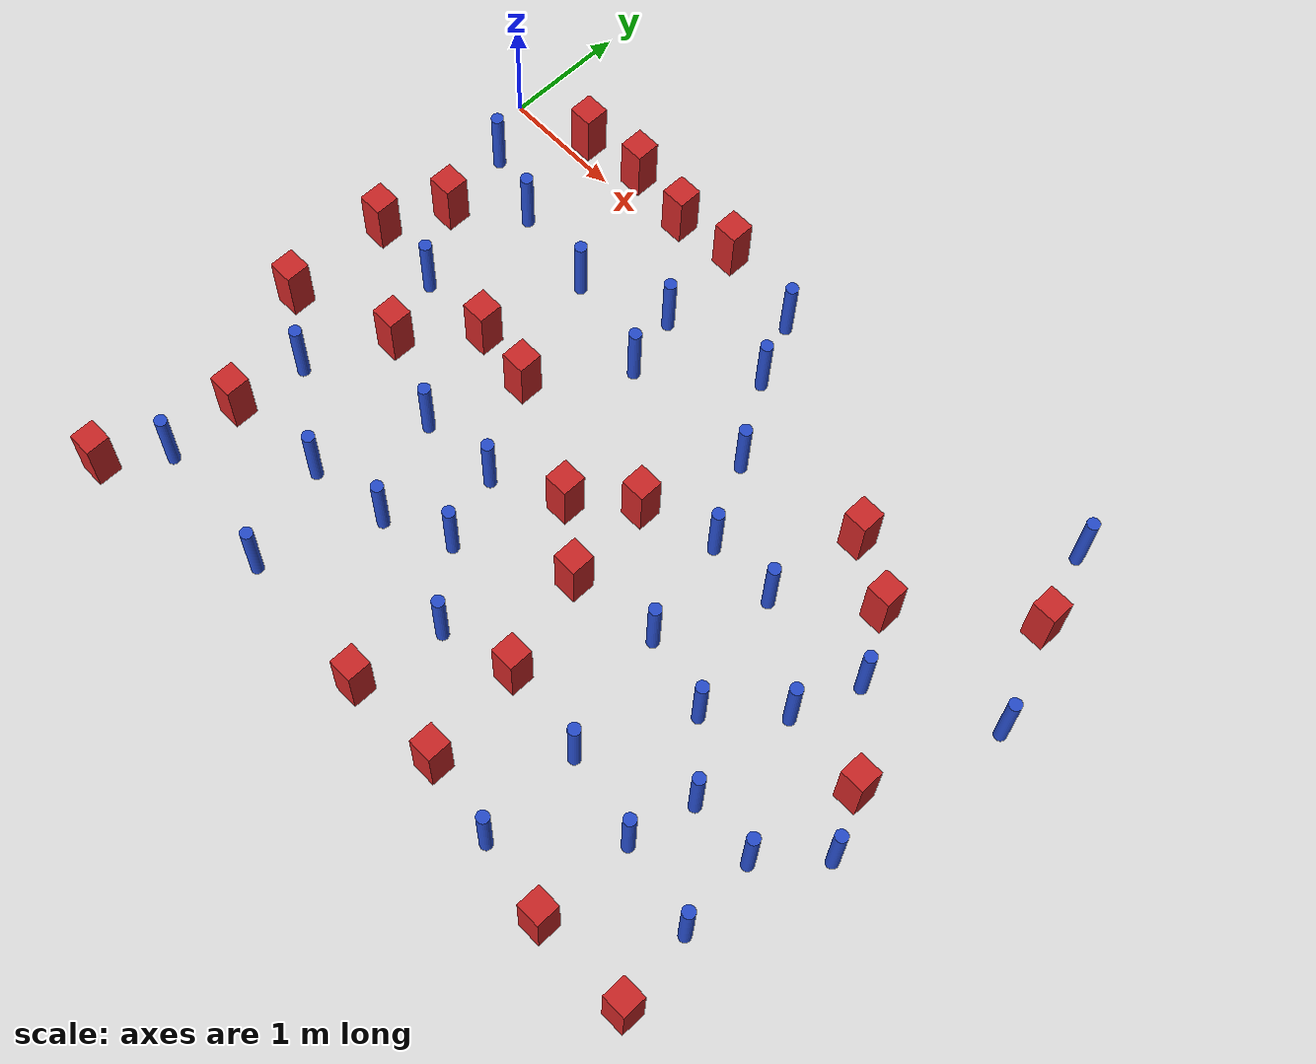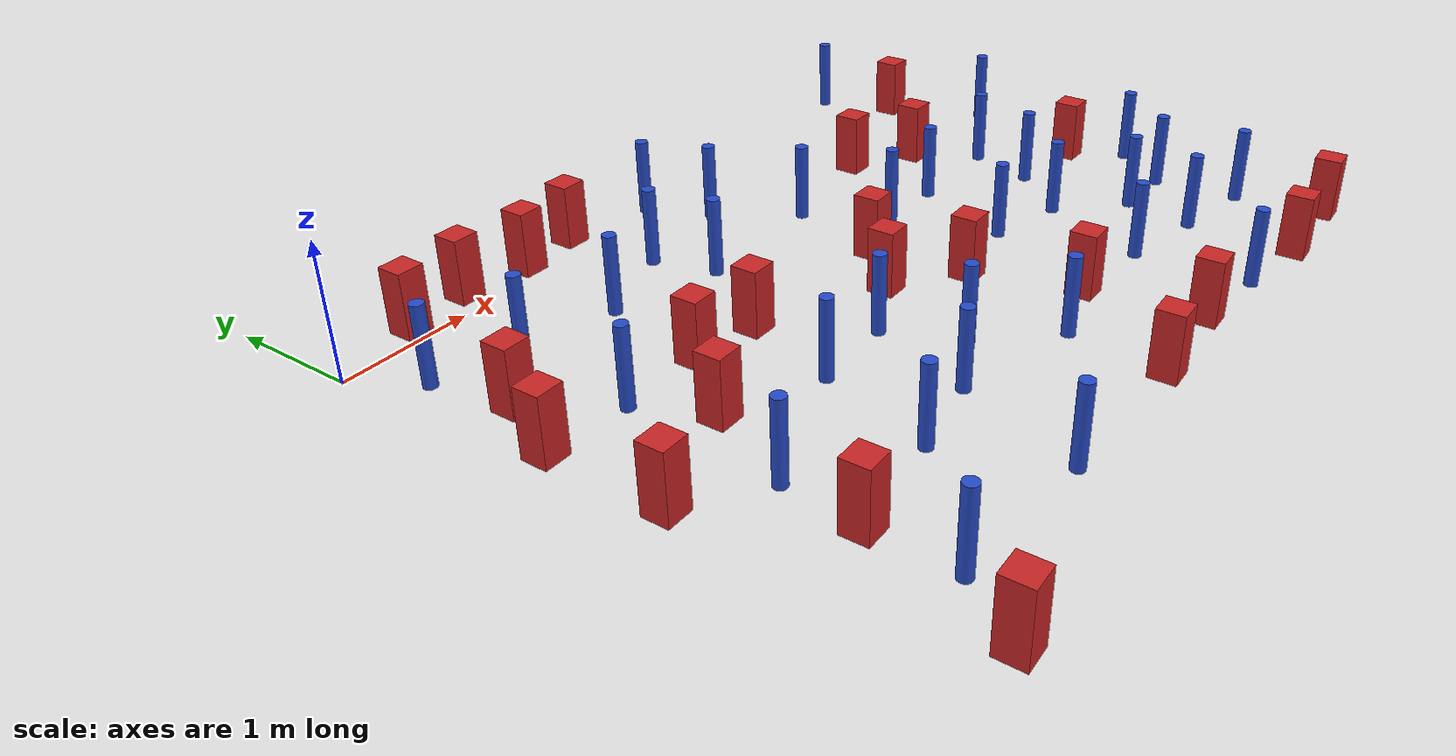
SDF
<sdf version="1.6">
 <model name="dense_58">
  <model name="square_post_obstacle2">
   <static>true</static>
   <pose>0.156342930012 -2.51117832905 -6.11067671241e-07 -5.50515727128e-06 -8.79689657224e-07 2.37013304536e-05</pose>
   <link name="link">
    <pose>0 0 0.25 0 -0 0</pose>
    <inertial>
     <mass>100</mass>
     <inertia>
      <ixx>0.166667</ixx>
      <ixy>0</ixy>
      <ixz>0</ixz>
      <iyy>0.166667</iyy>
      <iyz>0</iyz>
      <izz>0.166667</izz>
     </inertia>
    </inertial>
    <collision name="collision"><geometry><box><size>.2 .2 .5</size></box></geometry></collision>
    <visual name="visual">
     <geometry><box><size>.2 .2 .5</size></box></geometry>
     <material>
      <script><name>Gazebo/Red</name><uri>file://media/materials/scripts/gazebo.material</uri></script>
     </material>
    </visual>
   </link>
  </model>
  <model name="pole_obstacle2">
   <static>true</static>
   <pose>2.30330990491 -0.570750876402 -9.47619616065e-06 5.49618799738e-07 2.36310414075e-07 -1.55090534793e-07</pose>
   <link name="link">
    <pose>0 0 0.3 0 -0 0</pose>
    <inertial>
     <mass>1</mass>
     <inertia><ixx>0.145833</ixx><ixy>0</ixy><ixz>0</ixz><iyy>0.145833</iyy><iyz>0</iyz><izz>0.125</izz></inertia>
    </inertial>
    <collision name="collision">
     <geometry><cylinder><radius>0.05</radius><length>.6</length></cylinder></geometry>
    </collision>
    <visual name="visual">
     <geometry><cylinder><radius>0.05</radius><length>.6</length></cylinder></geometry>
     <material>
      <script><name>Gazebo/Blue</name><uri>file://media/materials/scripts/gazebo.material</uri></script>
     </material>
    </visual>
   </link>
  </model>
  <model name="pole_obstacle7">
   <static>true</static>
   <pose>5.74011570773 -3.17325462486 -9.47619616065e-06 5.49618799738e-07 2.36310414051e-07 -1.55090534805e-07</pose>
   <link name="link">
    <pose>0 0 0.3 0 -0 0</pose>
    <inertial>
     <mass>1</mass>
     <inertia><ixx>0.145833</ixx><ixy>0</ixy><ixz>0</ixz><iyy>0.145833</iyy><iyz>0</iyz><izz>0.125</izz></inertia>
    </inertial>
    <collision name="collision">
     <geometry><cylinder><radius>0.05</radius><length>.6</length></cylinder></geometry>
    </collision>
    <visual name="visual">
     <geometry><cylinder><radius>0.05</radius><length>.6</length></cylinder></geometry>
     <material>
      <script><name>Gazebo/Blue</name><uri>file://media/materials/scripts/gazebo.material</uri></script>
     </material>
    </visual>
   </link>
  </model>
  <model name="square_post_obstacle10">
   <static>true</static>
   <pose>4.5871182132 -0.866815643466 -6.11067671241e-07 -5.50515727128e-06 -8.79689657224e-07 2.37013304536e-05</pose>
   <link name="link">
    <pose>0 0 0.25 0 -0 0</pose>
    <inertial>
     <mass>100</mass>
     <inertia>
      <ixx>0.166667</ixx>
      <ixy>0</ixy>
      <ixz>0</ixz>
      <iyy>0.166667</iyy>
      <iyz>0</iyz>
      <izz>0.166667</izz>
     </inertia>
    </inertial>
    <collision name="collision"><geometry><box><size>.2 .2 .5</size></box></geometry></collision>
    <visual name="visual">
     <geometry><box><size>.2 .2 .5</size></box></geometry>
     <material>
      <script><name>Gazebo/Red</name><uri>file://media/materials/scripts/gazebo.material</uri></script>
     </material>
    </visual>
   </link>
  </model>
  <model name="pole_obstacle8">
   <static>true</static>
   <pose>0.598691550622 -4.07649091872 -9.47619616065e-06 5.49618799737e-07 2.36310414065e-07 -1.55090534796e-07</pose>
   <link name="link">
    <pose>0 0 0.3 0 -0 0</pose>
    <inertial>
     <mass>1</mass>
     <inertia><ixx>0.145833</ixx><ixy>0</ixy><ixz>0</ixz><iyy>0.145833</iyy><iyz>0</iyz><izz>0.125</izz></inertia>
    </inertial>
    <collision name="collision">
     <geometry><cylinder><radius>0.05</radius><length>.6</length></cylinder></geometry>
    </collision>
    <visual name="visual">
     <geometry><cylinder><radius>0.05</radius><length>.6</length></cylinder></geometry>
     <material>
      <script><name>Gazebo/Blue</name><uri>file://media/materials/scripts/gazebo.material</uri></script>
     </material>
    </visual>
   </link>
  </model>
  <model name="pole_obstacle12">
   <static>true</static>
   <pose>4.37692634435 -3.51146106822 -9.47619616065e-06 5.49618799738e-07 2.36310414051e-07 -1.55090534805e-07</pose>
   <link name="link">
    <pose>0 0 0.3 0 -0 0</pose>
    <inertial>
     <mass>1</mass>
     <inertia><ixx>0.145833</ixx><ixy>0</ixy><ixz>0</ixz><iyy>0.145833</iyy><iyz>0</iyz><izz>0.125</izz></inertia>
    </inertial>
    <collision name="collision">
     <geometry><cylinder><radius>0.05</radius><length>.6</length></cylinder></geometry>
    </collision>
    <visual name="visual">
     <geometry><cylinder><radius>0.05</radius><length>.6</length></cylinder></geometry>
     <material>
      <script><name>Gazebo/Blue</name><uri>file://media/materials/scripts/gazebo.material</uri></script>
     </material>
    </visual>
   </link>
  </model>
  <model name="square_post_obstacle30">
   <static>true</static>
   <pose>5.09484157151 -1.17074148817 -6.11067671241e-07 -5.50515727128e-06 -8.79689657224e-07 2.37013304536e-05</pose>
   <link name="link">
    <pose>0 0 0.25 0 -0 0</pose>
    <inertial>
     <mass>100</mass>
     <inertia>
      <ixx>0.166667</ixx>
      <ixy>0</ixy>
      <ixz>0</ixz>
      <iyy>0.166667</iyy>
      <iyz>0</iyz>
      <izz>0.166667</izz>
     </inertia>
    </inertial>
    <collision name="collision"><geometry><box><size>.2 .2 .5</size></box></geometry></collision>
    <visual name="visual">
     <geometry><box><size>.2 .2 .5</size></box></geometry>
     <material>
      <script><name>Gazebo/Red</name><uri>file://media/materials/scripts/gazebo.material</uri></script>
     </material>
    </visual>
   </link>
  </model>
  <model name="pole_obstacle31">
   <static>true</static>
   <pose>0.859033667772 -0.708765288475 -9.47619616065e-06 5.49618799737e-07 2.36310414058e-07 -1.55090534802e-07</pose>
   <link name="link">
    <pose>0 0 0.3 0 -0 0</pose>
    <inertial>
     <mass>1</mass>
     <inertia><ixx>0.145833</ixx><ixy>0</ixy><ixz>0</ixz><iyy>0.145833</iyy><iyz>0</iyz><izz>0.125</izz></inertia>
    </inertial>
    <collision name="collision">
     <geometry><cylinder><radius>0.05</radius><length>.6</length></cylinder></geometry>
    </collision>
    <visual name="visual">
     <geometry><cylinder><radius>0.05</radius><length>.6</length></cylinder></geometry>
     <material>
      <script><name>Gazebo/Blue</name><uri>file://media/materials/scripts/gazebo.material</uri></script>
     </material>
    </visual>
   </link>
  </model>
  <model name="pole_obstacle36">
   <static>true</static>
   <pose>1.60072143655 -0.834582067309 -9.47619616065e-06 5.49618799737e-07 2.36310414065e-07 -1.55090534798e-07</pose>
   <link name="link">
    <pose>0 0 0.3 0 -0 0</pose>
    <inertial>
     <mass>1</mass>
     <inertia><ixx>0.145833</ixx><ixy>0</ixy><ixz>0</ixz><iyy>0.145833</iyy><iyz>0</iyz><izz>0.125</izz></inertia>
    </inertial>
    <collision name="collision">
     <geometry><cylinder><radius>0.05</radius><length>.6</length></cylinder></geometry>
    </collision>
    <visual name="visual">
     <geometry><cylinder><radius>0.05</radius><length>.6</length></cylinder></geometry>
     <material>
      <script><name>Gazebo/Blue</name><uri>file://media/materials/scripts/gazebo.material</uri></script>
     </material>
    </visual>
   </link>
  </model>
  <model name="square_post_obstacle39">
   <static>true</static>
   <pose>2.93482607612 -4.27858987486 -6.11067671241e-07 -5.50515727128e-06 -8.79689657224e-07 2.37013304536e-05</pose>
   <link name="link">
    <pose>0 0 0.25 0 -0 0</pose>
    <inertial>
     <mass>100</mass>
     <inertia>
      <ixx>0.166667</ixx>
      <ixy>0</ixy>
      <ixz>0</ixz>
      <iyy>0.166667</iyy>
      <iyz>0</iyz>
      <izz>0.166667</izz>
     </inertia>
    </inertial>
    <collision name="collision"><geometry><box><size>.2 .2 .5</size></box></geometry></collision>
    <visual name="visual">
     <geometry><box><size>.2 .2 .5</size></box></geometry>
     <material>
      <script><name>Gazebo/Red</name><uri>file://media/materials/scripts/gazebo.material</uri></script>
     </material>
    </visual>
   </link>
  </model>
  <model name="pole_obstacle41">
   <static>true</static>
   <pose>0.684255084652 -2.88313401653 -9.47619616065e-06 5.49618799737e-07 2.36310414066e-07 -1.55090534797e-07</pose>
   <link name="link">
    <pose>0 0 0.3 0 -0 0</pose>
    <inertial>
     <mass>1</mass>
     <inertia><ixx>0.145833</ixx><ixy>0</ixy><ixz>0</ixz><iyy>0.145833</iyy><iyz>0</iyz><izz>0.125</izz></inertia>
    </inertial>
    <collision name="collision">
     <geometry><cylinder><radius>0.05</radius><length>.6</length></cylinder></geometry>
    </collision>
    <visual name="visual">
     <geometry><cylinder><radius>0.05</radius><length>.6</length></cylinder></geometry>
     <material>
      <script><name>Gazebo/Blue</name><uri>file://media/materials/scripts/gazebo.material</uri></script>
     </material>
    </visual>
   </link>
  </model>
  <model name="square_post_obstacle48">
   <static>true</static>
   <pose>0.157777967646 -1.61611802294 -6.11067671241e-07 -5.50515727128e-06 -8.79689657224e-07 2.37013304536e-05</pose>
   <link name="link">
    <pose>0 0 0.25 0 -0 0</pose>
    <inertial>
     <mass>100</mass>
     <inertia>
      <ixx>0.166667</ixx>
      <ixy>0</ixy>
      <ixz>0</ixz>
      <iyy>0.166667</iyy>
      <iyz>0</iyz>
      <izz>0.166667</izz>
     </inertia>
    </inertial>
    <collision name="collision"><geometry><box><size>.2 .2 .5</size></box></geometry></collision>
    <visual name="visual">
     <geometry><box><size>.2 .2 .5</size></box></geometry>
     <material>
      <script><name>Gazebo/Red</name><uri>file://media/materials/scripts/gazebo.material</uri></script>
     </material>
    </visual>
   </link>
  </model>
  <model name="pole_obstacle48">
   <static>true</static>
   <pose>5.77711679747 0.209393299795 -9.47619616065e-06 5.49618799737e-07 2.36310414071e-07 -1.55090534796e-07</pose>
   <link name="link">
    <pose>0 0 0.3 0 -0 0</pose>
    <inertial>
     <mass>1</mass>
     <inertia><ixx>0.145833</ixx><ixy>0</ixy><ixz>0</ixz><iyy>0.145833</iyy><iyz>0</iyz><izz>0.125</izz></inertia>
    </inertial>
    <collision name="collision">
     <geometry><cylinder><radius>0.05</radius><length>.6</length></cylinder></geometry>
    </collision>
    <visual name="visual">
     <geometry><cylinder><radius>0.05</radius><length>.6</length></cylinder></geometry>
     <material>
      <script><name>Gazebo/Blue</name><uri>file://media/materials/scripts/gazebo.material</uri></script>
     </material>
    </visual>
   </link>
  </model>
  <model name="square_post_obstacle49">
   <static>true</static>
   <pose>1.71750888979 0.128950846656 -6.11067671241e-07 -5.50515727128e-06 -8.79689657224e-07 2.37013304536e-05</pose>
   <link name="link">
    <pose>0 0 0.25 0 -0 0</pose>
    <inertial>
     <mass>100</mass>
     <inertia>
      <ixx>0.166667</ixx>
      <ixy>0</ixy>
      <ixz>0</ixz>
      <iyy>0.166667</iyy>
      <iyz>0</iyz>
      <izz>0.166667</izz>
     </inertia>
    </inertial>
    <collision name="collision"><geometry><box><size>.2 .2 .5</size></box></geometry></collision>
    <visual name="visual">
     <geometry><box><size>.2 .2 .5</size></box></geometry>
     <material>
      <script><name>Gazebo/Red</name><uri>file://media/materials/scripts/gazebo.material</uri></script>
     </material>
    </visual>
   </link>
  </model>
  <model name="square_post_obstacle52">
   <static>true</static>
   <pose>2.908980832 -2.2231665737 -6.11067671241e-07 -5.50515727128e-06 -8.79689657224e-07 2.37013304536e-05</pose>
   <link name="link">
    <pose>0 0 0.25 0 -0 0</pose>
    <inertial>
     <mass>100</mass>
     <inertia>
      <ixx>0.166667</ixx>
      <ixy>0</ixy>
      <ixz>0</ixz>
      <iyy>0.166667</iyy>
      <iyz>0</iyz>
      <izz>0.166667</izz>
     </inertia>
    </inertial>
    <collision name="collision"><geometry><box><size>.2 .2 .5</size></box></geometry></collision>
    <visual name="visual">
     <geometry><box><size>.2 .2 .5</size></box></geometry>
     <material>
      <script><name>Gazebo/Red</name><uri>file://media/materials/scripts/gazebo.material</uri></script>
     </material>
    </visual>
   </link>
  </model>
  <model name="square_post_obstacle58">
   <static>true</static>
   <pose>5.89812574175 -2.29102429211 -6.11067671241e-07 -5.50515727128e-06 -8.79689657224e-07 2.37013304536e-05</pose>
   <link name="link">
    <pose>0 0 0.25 0 -0 0</pose>
    <inertial>
     <mass>100</mass>
     <inertia>
      <ixx>0.166667</ixx>
      <ixy>0</ixy>
      <ixz>0</ixz>
      <iyy>0.166667</iyy>
      <iyz>0</iyz>
      <izz>0.166667</izz>
     </inertia>
    </inertial>
    <collision name="collision"><geometry><box><size>.2 .2 .5</size></box></geometry></collision>
    <visual name="visual">
     <geometry><box><size>.2 .2 .5</size></box></geometry>
     <material>
      <script><name>Gazebo/Red</name><uri>file://media/materials/scripts/gazebo.material</uri></script>
     </material>
    </visual>
   </link>
  </model>
  <model name="square_post_obstacle59">
   <static>true</static>
   <pose>0.615103116242 -3.46724367394 -6.11067671241e-07 -5.50515727128e-06 -8.79689657224e-07 2.37013304536e-05</pose>
   <link name="link">
    <pose>0 0 0.25 0 -0 0</pose>
    <inertial>
     <mass>100</mass>
     <inertia>
      <ixx>0.166667</ixx>
      <ixy>0</ixy>
      <ixz>0</ixz>
      <iyy>0.166667</iyy>
      <iyz>0</iyz>
      <izz>0.166667</izz>
     </inertia>
    </inertial>
    <collision name="collision"><geometry><box><size>.2 .2 .5</size></box></geometry></collision>
    <visual name="visual">
     <geometry><box><size>.2 .2 .5</size></box></geometry>
     <material>
      <script><name>Gazebo/Red</name><uri>file://media/materials/scripts/gazebo.material</uri></script>
     </material>
    </visual>
   </link>
  </model>
  <model name="pole_obstacle57">
   <static>true</static>
   <pose>1.43092163037 -3.38177642899 -9.47619616065e-06 5.49618799737e-07 2.36310414062e-07 -1.55090534798e-07</pose>
   <link name="link">
    <pose>0 0 0.3 0 -0 0</pose>
    <inertial>
     <mass>1</mass>
     <inertia><ixx>0.145833</ixx><ixy>0</ixy><ixz>0</ixz><iyy>0.145833</iyy><iyz>0</iyz><izz>0.125</izz></inertia>
    </inertial>
    <collision name="collision">
     <geometry><cylinder><radius>0.05</radius><length>.6</length></cylinder></geometry>
    </collision>
    <visual name="visual">
     <geometry><cylinder><radius>0.05</radius><length>.6</length></cylinder></geometry>
     <material>
      <script><name>Gazebo/Blue</name><uri>file://media/materials/scripts/gazebo.material</uri></script>
     </material>
    </visual>
   </link>
  </model>
  <model name="pole_obstacle68">
   <static>true</static>
   <pose>5.2035490356 -2.21163142448 -9.47619616065e-06 5.49618799738e-07 2.36310414051e-07 -1.55090534805e-07</pose>
   <link name="link">
    <pose>0 0 0.3 0 -0 0</pose>
    <inertial>
     <mass>1</mass>
     <inertia><ixx>0.145833</ixx><ixy>0</ixy><ixz>0</ixz><iyy>0.145833</iyy><iyz>0</iyz><izz>0.125</izz></inertia>
    </inertial>
    <collision name="collision">
     <geometry><cylinder><radius>0.05</radius><length>.6</length></cylinder></geometry>
    </collision>
    <visual name="visual">
     <geometry><cylinder><radius>0.05</radius><length>.6</length></cylinder></geometry>
     <material>
      <script><name>Gazebo/Blue</name><uri>file://media/materials/scripts/gazebo.material</uri></script>
     </material>
    </visual>
   </link>
  </model>
  <model name="pole_obstacle69">
   <static>true</static>
   <pose>5.08811542425 -3.67580855136 -9.47619616065e-06 5.49618799738e-07 2.36310414051e-07 -1.55090534805e-07</pose>
   <link name="link">
    <pose>0 0 0.3 0 -0 0</pose>
    <inertial>
     <mass>1</mass>
     <inertia><ixx>0.145833</ixx><ixy>0</ixy><ixz>0</ixz><iyy>0.145833</iyy><iyz>0</iyz><izz>0.125</izz></inertia>
    </inertial>
    <collision name="collision">
     <geometry><cylinder><radius>0.05</radius><length>.6</length></cylinder></geometry>
    </collision>
    <visual name="visual">
     <geometry><cylinder><radius>0.05</radius><length>.6</length></cylinder></geometry>
     <material>
      <script><name>Gazebo/Blue</name><uri>file://media/materials/scripts/gazebo.material</uri></script>
     </material>
    </visual>
   </link>
  </model>
  <model name="pole_obstacle80">
   <static>true</static>
   <pose>3.17423576549 -0.427183723087 -9.47619616065e-06 5.49618799738e-07 2.36310414074e-07 -1.55090534794e-07</pose>
   <link name="link">
    <pose>0 0 0.3 0 -0 0</pose>
    <inertial>
     <mass>1</mass>
     <inertia><ixx>0.145833</ixx><ixy>0</ixy><ixz>0</ixz><iyy>0.145833</iyy><iyz>0</iyz><izz>0.125</izz></inertia>
    </inertial>
    <collision name="collision">
     <geometry><cylinder><radius>0.05</radius><length>.6</length></cylinder></geometry>
    </collision>
    <visual name="visual">
     <geometry><cylinder><radius>0.05</radius><length>.6</length></cylinder></geometry>
     <material>
      <script><name>Gazebo/Blue</name><uri>file://media/materials/scripts/gazebo.material</uri></script>
     </material>
    </visual>
   </link>
  </model>
  <model name="pole_obstacle84">
   <static>true</static>
   <pose>3.56374168596 -1.04376437411 -9.47619616065e-06 5.49618799738e-07 2.3631041407e-07 -1.55090534797e-07</pose>
   <link name="link">
    <pose>0 0 0.3 0 -0 0</pose>
    <inertial>
     <mass>1</mass>
     <inertia><ixx>0.145833</ixx><ixy>0</ixy><ixz>0</ixz><iyy>0.145833</iyy><iyz>0</iyz><izz>0.125</izz></inertia>
    </inertial>
    <collision name="collision">
     <geometry><cylinder><radius>0.05</radius><length>.6</length></cylinder></geometry>
    </collision>
    <visual name="visual">
     <geometry><cylinder><radius>0.05</radius><length>.6</length></cylinder></geometry>
     <material>
      <script><name>Gazebo/Blue</name><uri>file://media/materials/scripts/gazebo.material</uri></script>
     </material>
    </visual>
   </link>
  </model>
  <model name="pole_obstacle86">
   <static>true</static>
   <pose>4.12236139312 -2.50142660109 -9.47619616065e-06 5.49618799738e-07 2.36310414051e-07 -1.55090534805e-07</pose>
   <link name="link">
    <pose>0 0 0.3 0 -0 0</pose>
    <inertial>
     <mass>1</mass>
     <inertia><ixx>0.145833</ixx><ixy>0</ixy><ixz>0</ixz><iyy>0.145833</iyy><iyz>0</iyz><izz>0.125</izz></inertia>
    </inertial>
    <collision name="collision">
     <geometry><cylinder><radius>0.05</radius><length>.6</length></cylinder></geometry>
    </collision>
    <visual name="visual">
     <geometry><cylinder><radius>0.05</radius><length>.6</length></cylinder></geometry>
     <material>
      <script><name>Gazebo/Blue</name><uri>file://media/materials/scripts/gazebo.material</uri></script>
     </material>
    </visual>
   </link>
  </model>
  <model name="pole_obstacle92">
   <static>true</static>
   <pose>4.75399418786 -2.66989604603 -9.47619616065e-06 5.49618799738e-07 2.36310414051e-07 -1.55090534805e-07</pose>
   <link name="link">
    <pose>0 0 0.3 0 -0 0</pose>
    <inertial>
     <mass>1</mass>
     <inertia><ixx>0.145833</ixx><ixy>0</ixy><ixz>0</ixz><iyy>0.145833</iyy><iyz>0</iyz><izz>0.125</izz></inertia>
    </inertial>
    <collision name="collision">
     <geometry><cylinder><radius>0.05</radius><length>.6</length></cylinder></geometry>
    </collision>
    <visual name="visual">
     <geometry><cylinder><radius>0.05</radius><length>.6</length></cylinder></geometry>
     <material>
      <script><name>Gazebo/Blue</name><uri>file://media/materials/scripts/gazebo.material</uri></script>
     </material>
    </visual>
   </link>
  </model>
  <model name="pole_obstacle94">
   <static>true</static>
   <pose>6.12464798968 -2.74110601947 -9.47619616065e-06 5.49618799738e-07 2.36310414051e-07 -1.55090534805e-07</pose>
   <link name="link">
    <pose>0 0 0.3 0 -0 0</pose>
    <inertial>
     <mass>1</mass>
     <inertia><ixx>0.145833</ixx><ixy>0</ixy><ixz>0</ixz><iyy>0.145833</iyy><iyz>0</iyz><izz>0.125</izz></inertia>
    </inertial>
    <collision name="collision">
     <geometry><cylinder><radius>0.05</radius><length>.6</length></cylinder></geometry>
    </collision>
    <visual name="visual">
     <geometry><cylinder><radius>0.05</radius><length>.6</length></cylinder></geometry>
     <material>
      <script><name>Gazebo/Blue</name><uri>file://media/materials/scripts/gazebo.material</uri></script>
     </material>
    </visual>
   </link>
  </model>
  <model name="square_post_obstacle84">
   <static>true</static>
   <pose>3.63636659415 -3.41041465702 -6.11067671241e-07 -5.50515727128e-06 -8.79689657224e-07 2.37013304536e-05</pose>
   <link name="link">
    <pose>0 0 0.25 0 -0 0</pose>
    <inertial>
     <mass>100</mass>
     <inertia>
      <ixx>0.166667</ixx>
      <ixy>0</ixy>
      <ixz>0</ixz>
      <iyy>0.166667</iyy>
      <iyz>0</iyz>
      <izz>0.166667</izz>
     </inertia>
    </inertial>
    <collision name="collision"><geometry><box><size>.2 .2 .5</size></box></geometry></collision>
    <visual name="visual">
     <geometry><box><size>.2 .2 .5</size></box></geometry>
     <material>
      <script><name>Gazebo/Red</name><uri>file://media/materials/scripts/gazebo.material</uri></script>
     </material>
    </visual>
   </link>
  </model>
  <model name="square_post_obstacle95">
   <static>true</static>
   <pose>1.17771723466 0.199140637478 -6.11067671241e-07 -5.50515727128e-06 -8.79689657224e-07 2.37013304536e-05</pose>
   <link name="link">
    <pose>0 0 0.25 0 -0 0</pose>
    <inertial>
     <mass>100</mass>
     <inertia>
      <ixx>0.166667</ixx>
      <ixy>0</ixy>
      <ixz>0</ixz>
      <iyy>0.166667</iyy>
      <iyz>0</iyz>
      <izz>0.166667</izz>
     </inertia>
    </inertial>
    <collision name="collision"><geometry><box><size>.2 .2 .5</size></box></geometry></collision>
    <visual name="visual">
     <geometry><box><size>.2 .2 .5</size></box></geometry>
     <material>
      <script><name>Gazebo/Red</name><uri>file://media/materials/scripts/gazebo.material</uri></script>
     </material>
    </visual>
   </link>
  </model>
  <model name="square_post_obstacle96">
   <static>true</static>
   <pose>2.21888715329 0.195829875069 -6.11067671241e-07 -5.50515727128e-06 -8.79689657224e-07 2.37013304536e-05</pose>
   <link name="link">
    <pose>0 0 0.25 0 -0 0</pose>
    <inertial>
     <mass>100</mass>
     <inertia>
      <ixx>0.166667</ixx>
      <ixy>0</ixy>
      <ixz>0</ixz>
      <iyy>0.166667</iyy>
      <iyz>0</iyz>
      <izz>0.166667</izz>
     </inertia>
    </inertial>
    <collision name="collision"><geometry><box><size>.2 .2 .5</size></box></geometry></collision>
    <visual name="visual">
     <geometry><box><size>.2 .2 .5</size></box></geometry>
     <material>
      <script><name>Gazebo/Red</name><uri>file://media/materials/scripts/gazebo.material</uri></script>
     </material>
    </visual>
   </link>
  </model>
  <model name="square_post_obstacle102">
   <static>true</static>
   <pose>1.4255975735 -1.68915910112 -6.11067671241e-07 -5.50515727128e-06 -8.79689657224e-07 2.37013304536e-05</pose>
   <link name="link">
    <pose>0 0 0.25 0 -0 0</pose>
    <inertial>
     <mass>100</mass>
     <inertia>
      <ixx>0.166667</ixx>
      <ixy>0</ixy>
      <ixz>0</ixz>
      <iyy>0.166667</iyy>
      <iyz>0</iyz>
      <izz>0.166667</izz>
     </inertia>
    </inertial>
    <collision name="collision"><geometry><box><size>.2 .2 .5</size></box></geometry></collision>
    <visual name="visual">
     <geometry><box><size>.2 .2 .5</size></box></geometry>
     <material>
      <script><name>Gazebo/Red</name><uri>file://media/materials/scripts/gazebo.material</uri></script>
     </material>
    </visual>
   </link>
  </model>
  <model name="pole_obstacle120">
   <static>true</static>
   <pose>4.4089110404 -4.37202703897 -9.47619616065e-06 5.49618799737e-07 2.36310414037e-07 -1.55090534814e-07</pose>
   <link name="link">
    <pose>0 0 0.3 0 -0 0</pose>
    <inertial>
     <mass>1</mass>
     <inertia><ixx>0.145833</ixx><ixy>0</ixy><ixz>0</ixz><iyy>0.145833</iyy><iyz>0</iyz><izz>0.125</izz></inertia>
    </inertial>
    <collision name="collision">
     <geometry><cylinder><radius>0.05</radius><length>.6</length></cylinder></geometry>
    </collision>
    <visual name="visual">
     <geometry><cylinder><radius>0.05</radius><length>.6</length></cylinder></geometry>
     <material>
      <script><name>Gazebo/Blue</name><uri>file://media/materials/scripts/gazebo.material</uri></script>
     </material>
    </visual>
   </link>
  </model>
  <model name="pole_obstacle123">
   <static>true</static>
   <pose>2.369964714 -2.485853225 -9.47619616065e-06 5.49618799737e-07 2.36310414051e-07 -1.55090534807e-07</pose>
   <link name="link">
    <pose>0 0 0.3 0 -0 0</pose>
    <inertial>
     <mass>1</mass>
     <inertia><ixx>0.145833</ixx><ixy>0</ixy><ixz>0</ixz><iyy>0.145833</iyy><iyz>0</iyz><izz>0.125</izz></inertia>
    </inertial>
    <collision name="collision">
     <geometry><cylinder><radius>0.05</radius><length>.6</length></cylinder></geometry>
    </collision>
    <visual name="visual">
     <geometry><cylinder><radius>0.05</radius><length>.6</length></cylinder></geometry>
     <material>
      <script><name>Gazebo/Blue</name><uri>file://media/materials/scripts/gazebo.material</uri></script>
     </material>
    </visual>
   </link>
  </model>
  <model name="pole_obstacle128">
   <static>true</static>
   <pose>2.58022506488 -3.04610804222 -9.47619616065e-06 5.49618799737e-07 2.36310414051e-07 -1.55090534807e-07</pose>
   <link name="link">
    <pose>0 0 0.3 0 -0 0</pose>
    <inertial>
     <mass>1</mass>
     <inertia><ixx>0.145833</ixx><ixy>0</ixy><ixz>0</ixz><iyy>0.145833</iyy><iyz>0</iyz><izz>0.125</izz></inertia>
    </inertial>
    <collision name="collision">
     <geometry><cylinder><radius>0.05</radius><length>.6</length></cylinder></geometry>
    </collision>
    <visual name="visual">
     <geometry><cylinder><radius>0.05</radius><length>.6</length></cylinder></geometry>
     <material>
      <script><name>Gazebo/Blue</name><uri>file://media/materials/scripts/gazebo.material</uri></script>
     </material>
    </visual>
   </link>
  </model>
  <model name="pole_obstacle131">
   <static>true</static>
   <pose>2.43298786045 -1.06352223911 -9.47619616065e-06 5.49618799737e-07 2.36310414072e-07 -1.55090534793e-07</pose>
   <link name="link">
    <pose>0 0 0.3 0 -0 0</pose>
    <inertial>
     <mass>1</mass>
     <inertia><ixx>0.145833</ixx><ixy>0</ixy><ixz>0</ixz><iyy>0.145833</iyy><iyz>0</iyz><izz>0.125</izz></inertia>
    </inertial>
    <collision name="collision">
     <geometry><cylinder><radius>0.05</radius><length>.6</length></cylinder></geometry>
    </collision>
    <visual name="visual">
     <geometry><cylinder><radius>0.05</radius><length>.6</length></cylinder></geometry>
     <material>
      <script><name>Gazebo/Blue</name><uri>file://media/materials/scripts/gazebo.material</uri></script>
     </material>
    </visual>
   </link>
  </model>
  <model name="pole_obstacle134">
   <static>true</static>
   <pose>1.72544713327 -4.19522933759 -9.47619616065e-06 5.49618799737e-07 2.36310414061e-07 -1.550905348e-07</pose>
   <link name="link">
    <pose>0 0 0.3 0 -0 0</pose>
    <inertial>
     <mass>1</mass>
     <inertia><ixx>0.145833</ixx><ixy>0</ixy><ixz>0</ixz><iyy>0.145833</iyy><iyz>0</iyz><izz>0.125</izz></inertia>
    </inertial>
    <collision name="collision">
     <geometry><cylinder><radius>0.05</radius><length>.6</length></cylinder></geometry>
    </collision>
    <visual name="visual">
     <geometry><cylinder><radius>0.05</radius><length>.6</length></cylinder></geometry>
     <material>
      <script><name>Gazebo/Blue</name><uri>file://media/materials/scripts/gazebo.material</uri></script>
     </material>
    </visual>
   </link>
  </model>
  <model name="square_post_obstacle123">
   <static>true</static>
   <pose>3.40715910442 -2.60395416076 -6.11067671241e-07 -5.50515727128e-06 -8.79689657224e-07 2.37013304536e-05</pose>
   <link name="link">
    <pose>0 0 0.25 0 -0 0</pose>
    <inertial>
     <mass>100</mass>
     <inertia>
      <ixx>0.166667</ixx>
      <ixy>0</ixy>
      <ixz>0</ixz>
      <iyy>0.166667</iyy>
      <iyz>0</iyz>
      <izz>0.166667</izz>
     </inertia>
    </inertial>
    <collision name="collision"><geometry><box><size>.2 .2 .5</size></box></geometry></collision>
    <visual name="visual">
     <geometry><box><size>.2 .2 .5</size></box></geometry>
     <material>
      <script><name>Gazebo/Red</name><uri>file://media/materials/scripts/gazebo.material</uri></script>
     </material>
    </visual>
   </link>
  </model>
  <model name="square_post_obstacle125">
   <static>true</static>
   <pose>0.39505921362 -1.11123982127 -6.11067671241e-07 -5.50515727128e-06 -8.79689657224e-07 2.37013304536e-05</pose>
   <link name="link">
    <pose>0 0 0.25 0 -0 0</pose>
    <inertial>
     <mass>100</mass>
     <inertia>
      <ixx>0.166667</ixx>
      <ixy>0</ixy>
      <ixz>0</ixz>
      <iyy>0.166667</iyy>
      <iyz>0</iyz>
      <izz>0.166667</izz>
     </inertia>
    </inertial>
    <collision name="collision"><geometry><box><size>.2 .2 .5</size></box></geometry></collision>
    <visual name="visual">
     <geometry><box><size>.2 .2 .5</size></box></geometry>
     <material>
      <script><name>Gazebo/Red</name><uri>file://media/materials/scripts/gazebo.material</uri></script>
     </material>
    </visual>
   </link>
  </model>
  <model name="pole_obstacle142">
   <static>true</static>
   <pose>5.2004864819 -3.14313990131 -9.47619616065e-06 5.49618799738e-07 2.36310414051e-07 -1.55090534805e-07</pose>
   <link name="link">
    <pose>0 0 0.3 0 -0 0</pose>
    <inertial>
     <mass>1</mass>
     <inertia><ixx>0.145833</ixx><ixy>0</ixy><ixz>0</ixz><iyy>0.145833</iyy><iyz>0</iyz><izz>0.125</izz></inertia>
    </inertial>
    <collision name="collision">
     <geometry><cylinder><radius>0.05</radius><length>.6</length></cylinder></geometry>
    </collision>
    <visual name="visual">
     <geometry><cylinder><radius>0.05</radius><length>.6</length></cylinder></geometry>
     <material>
      <script><name>Gazebo/Blue</name><uri>file://media/materials/scripts/gazebo.material</uri></script>
     </material>
    </visual>
   </link>
  </model>
  <model name="pole_obstacle143">
   <static>true</static>
   <pose>1.70800473408 -2.51095901934 -9.47619616065e-06 5.49618799737e-07 2.36310414062e-07 -1.55090534798e-07</pose>
   <link name="link">
    <pose>0 0 0.3 0 -0 0</pose>
    <inertial>
     <mass>1</mass>
     <inertia><ixx>0.145833</ixx><ixy>0</ixy><ixz>0</ixz><iyy>0.145833</iyy><iyz>0</iyz><izz>0.125</izz></inertia>
    </inertial>
    <collision name="collision">
     <geometry><cylinder><radius>0.05</radius><length>.6</length></cylinder></geometry>
    </collision>
    <visual name="visual">
     <geometry><cylinder><radius>0.05</radius><length>.6</length></cylinder></geometry>
     <material>
      <script><name>Gazebo/Blue</name><uri>file://media/materials/scripts/gazebo.material</uri></script>
     </material>
    </visual>
   </link>
  </model>
  <model name="square_post_obstacle137">
   <static>true</static>
   <pose>3.31817755528 -1.84903389752 -6.11067671241e-07 -5.50515727128e-06 -8.79689657224e-07 2.37013304536e-05</pose>
   <link name="link">
    <pose>0 0 0.25 0 -0 0</pose>
    <inertial>
     <mass>100</mass>
     <inertia>
      <ixx>0.166667</ixx>
      <ixy>0</ixy>
      <ixz>0</ixz>
      <iyy>0.166667</iyy>
      <iyz>0</iyz>
      <izz>0.166667</izz>
     </inertia>
    </inertial>
    <collision name="collision"><geometry><box><size>.2 .2 .5</size></box></geometry></collision>
    <visual name="visual">
     <geometry><box><size>.2 .2 .5</size></box></geometry>
     <material>
      <script><name>Gazebo/Red</name><uri>file://media/materials/scripts/gazebo.material</uri></script>
     </material>
    </visual>
   </link>
  </model>
  <model name="pole_obstacle156">
   <static>true</static>
   <pose>0.283253121827 -0.49132736094 -9.47619616065e-06 5.49618799737e-07 2.36310414058e-07 -1.55090534802e-07</pose>
   <link name="link">
    <pose>0 0 0.3 0 -0 0</pose>
    <inertial>
     <mass>1</mass>
     <inertia><ixx>0.145833</ixx><ixy>0</ixy><ixz>0</ixz><iyy>0.145833</iyy><iyz>0</iyz><izz>0.125</izz></inertia>
    </inertial>
    <collision name="collision">
     <geometry><cylinder><radius>0.05</radius><length>.6</length></cylinder></geometry>
    </collision>
    <visual name="visual">
     <geometry><cylinder><radius>0.05</radius><length>.6</length></cylinder></geometry>
     <material>
      <script><name>Gazebo/Blue</name><uri>file://media/materials/scripts/gazebo.material</uri></script>
     </material>
    </visual>
   </link>
  </model>
  <model name="square_post_obstacle147">
   <static>true</static>
   <pose>1.94663490491 -1.7636382688 -6.11067671241e-07 -5.50515727128e-06 -8.79689657224e-07 2.37013304536e-05</pose>
   <link name="link">
    <pose>0 0 0.25 0 -0 0</pose>
    <inertial>
     <mass>100</mass>
     <inertia>
      <ixx>0.166667</ixx>
      <ixy>0</ixy>
      <ixz>0</ixz>
      <iyy>0.166667</iyy>
      <iyz>0</iyz>
      <izz>0.166667</izz>
     </inertia>
    </inertial>
    <collision name="collision"><geometry><box><size>.2 .2 .5</size></box></geometry></collision>
    <visual name="visual">
     <geometry><box><size>.2 .2 .5</size></box></geometry>
     <material>
      <script><name>Gazebo/Red</name><uri>file://media/materials/scripts/gazebo.material</uri></script>
     </material>
    </visual>
   </link>
  </model>
  <model name="pole_obstacle162">
   <static>true</static>
   <pose>2.95524875526 0.0659386893991 -9.4761961606e-06 5.49618799729e-07 2.36310414001e-07 -1.55090534824e-07</pose>
   <link name="link">
    <pose>0 0 0.3 0 -0 0</pose>
    <inertial>
     <mass>1</mass>
     <inertia><ixx>0.145833</ixx><ixy>0</ixy><ixz>0</ixz><iyy>0.145833</iyy><iyz>0</iyz><izz>0.125</izz></inertia>
    </inertial>
    <collision name="collision">
     <geometry><cylinder><radius>0.05</radius><length>.6</length></cylinder></geometry>
    </collision>
    <visual name="visual">
     <geometry><cylinder><radius>0.05</radius><length>.6</length></cylinder></geometry>
     <material>
      <script><name>Gazebo/Blue</name><uri>file://media/materials/scripts/gazebo.material</uri></script>
     </material>
    </visual>
   </link>
  </model>
  <model name="pole_obstacle164">
   <static>true</static>
   <pose>0.780465019898 -1.68101932719 -9.47619616065e-06 5.49618799738e-07 2.36310414061e-07 -1.55090534801e-07</pose>
   <link name="link">
    <pose>0 0 0.3 0 -0 0</pose>
    <inertial>
     <mass>1</mass>
     <inertia><ixx>0.145833</ixx><ixy>0</ixy><ixz>0</ixz><iyy>0.145833</iyy><iyz>0</iyz><izz>0.125</izz></inertia>
    </inertial>
    <collision name="collision">
     <geometry><cylinder><radius>0.05</radius><length>.6</length></cylinder></geometry>
    </collision>
    <visual name="visual">
     <geometry><cylinder><radius>0.05</radius><length>.6</length></cylinder></geometry>
     <material>
      <script><name>Gazebo/Blue</name><uri>file://media/materials/scripts/gazebo.material</uri></script>
     </material>
    </visual>
   </link>
  </model>
  <model name="pole_obstacle165">
   <static>true</static>
   <pose>4.47390983658 -1.681089528 -9.47619616065e-06 5.49618799738e-07 2.36310414071e-07 -1.55090534796e-07</pose>
   <link name="link">
    <pose>0 0 0.3 0 -0 0</pose>
    <inertial>
     <mass>1</mass>
     <inertia><ixx>0.145833</ixx><ixy>0</ixy><ixz>0</ixz><iyy>0.145833</iyy><iyz>0</iyz><izz>0.125</izz></inertia>
    </inertial>
    <collision name="collision">
     <geometry><cylinder><radius>0.05</radius><length>.6</length></cylinder></geometry>
    </collision>
    <visual name="visual">
     <geometry><cylinder><radius>0.05</radius><length>.6</length></cylinder></geometry>
     <material>
      <script><name>Gazebo/Blue</name><uri>file://media/materials/scripts/gazebo.material</uri></script>
     </material>
    </visual>
   </link>
  </model>
  <model name="square_post_obstacle176">
   <static>true</static>
   <pose>0.997359104206 -2.2160615599 -6.11067671241e-07 -5.50515727128e-06 -8.79689657224e-07 2.37013304536e-05</pose>
   <link name="link">
    <pose>0 0 0.25 0 -0 0</pose>
    <inertial>
     <mass>100</mass>
     <inertia>
      <ixx>0.166667</ixx>
      <ixy>0</ixy>
      <ixz>0</ixz>
      <iyy>0.166667</iyy>
      <iyz>0</iyz>
      <izz>0.166667</izz>
     </inertia>
    </inertial>
    <collision name="collision"><geometry><box><size>.2 .2 .5</size></box></geometry></collision>
    <visual name="visual">
     <geometry><box><size>.2 .2 .5</size></box></geometry>
     <material>
      <script><name>Gazebo/Red</name><uri>file://media/materials/scripts/gazebo.material</uri></script>
     </material>
    </visual>
   </link>
  </model>
  <model name="square_post_obstacle185">
   <static>true</static>
   <pose>5.88656362062 -4.49320100275 -6.11067671241e-07 -5.50515727128e-06 -8.79689657224e-07 2.37013304536e-05</pose>
   <link name="link">
    <pose>0 0 0.25 0 -0 0</pose>
    <inertial>
     <mass>100</mass>
     <inertia>
      <ixx>0.166667</ixx>
      <ixy>0</ixy>
      <ixz>0</ixz>
      <iyy>0.166667</iyy>
      <iyz>0</iyz>
      <izz>0.166667</izz>
     </inertia>
    </inertial>
    <collision name="collision"><geometry><box><size>.2 .2 .5</size></box></geometry></collision>
    <visual name="visual">
     <geometry><box><size>.2 .2 .5</size></box></geometry>
     <material>
      <script><name>Gazebo/Red</name><uri>file://media/materials/scripts/gazebo.material</uri></script>
     </material>
    </visual>
   </link>
  </model>
  <model name="square_post_obstacle188">
   <static>true</static>
   <pose>5.07437966554 -4.49093543063 -6.11067671241e-07 -5.50515727128e-06 -8.79689657224e-07 2.37013304536e-05</pose>
   <link name="link">
    <pose>0 0 0.25 0 -0 0</pose>
    <inertial>
     <mass>100</mass>
     <inertia>
      <ixx>0.166667</ixx>
      <ixy>0</ixy>
      <ixz>0</ixz>
      <iyy>0.166667</iyy>
      <iyz>0</iyz>
      <izz>0.166667</izz>
     </inertia>
    </inertial>
    <collision name="collision"><geometry><box><size>.2 .2 .5</size></box></geometry></collision>
    <visual name="visual">
     <geometry><box><size>.2 .2 .5</size></box></geometry>
     <material>
      <script><name>Gazebo/Red</name><uri>file://media/materials/scripts/gazebo.material</uri></script>
     </material>
    </visual>
   </link>
  </model>
  <model name="square_post_obstacle192">
   <static>true</static>
   <pose>0.660345635087 0.138620742256 -6.11067671241e-07 -5.50515727128e-06 -8.79689657224e-07 2.37013304536e-05</pose>
   <link name="link">
    <pose>0 0 0.25 0 -0 0</pose>
    <inertial>
     <mass>100</mass>
     <inertia>
      <ixx>0.166667</ixx>
      <ixy>0</ixy>
      <ixz>0</ixz>
      <iyy>0.166667</iyy>
      <iyz>0</iyz>
      <izz>0.166667</izz>
     </inertia>
    </inertial>
    <collision name="collision"><geometry><box><size>.2 .2 .5</size></box></geometry></collision>
    <visual name="visual">
     <geometry><box><size>.2 .2 .5</size></box></geometry>
     <material>
      <script><name>Gazebo/Red</name><uri>file://media/materials/scripts/gazebo.material</uri></script>
     </material>
    </visual>
   </link>
  </model>
  <model name="pole_obstacle192">
   <static>true</static>
   <pose>5.38892852048 -1.67375539383 -9.47619616065e-06 5.49618799738e-07 2.36310414071e-07 -1.55090534796e-07</pose>
   <link name="link">
    <pose>0 0 0.3 0 -0 0</pose>
    <inertial>
     <mass>1</mass>
     <inertia><ixx>0.145833</ixx><ixy>0</ixy><ixz>0</ixz><iyy>0.145833</iyy><iyz>0</iyz><izz>0.125</izz></inertia>
    </inertial>
    <collision name="collision">
     <geometry><cylinder><radius>0.05</radius><length>.6</length></cylinder></geometry>
    </collision>
    <visual name="visual">
     <geometry><cylinder><radius>0.05</radius><length>.6</length></cylinder></geometry>
     <material>
      <script><name>Gazebo/Blue</name><uri>file://media/materials/scripts/gazebo.material</uri></script>
     </material>
    </visual>
   </link>
  </model>
  <model name="pole_obstacle198">
   <static>true</static>
   <pose>5.79518384165 -3.82782737832 -9.47619616065e-06 5.49618799738e-07 2.36310414051e-07 -1.55090534805e-07</pose>
   <link name="link">
    <pose>0 0 0.3 0 -0 0</pose>
    <inertial>
     <mass>1</mass>
     <inertia><ixx>0.145833</ixx><ixy>0</ixy><ixz>0</ixz><iyy>0.145833</iyy><iyz>0</iyz><izz>0.125</izz></inertia>
    </inertial>
    <collision name="collision">
     <geometry><cylinder><radius>0.05</radius><length>.6</length></cylinder></geometry>
    </collision>
    <visual name="visual">
     <geometry><cylinder><radius>0.05</radius><length>.6</length></cylinder></geometry>
     <material>
      <script><name>Gazebo/Blue</name><uri>file://media/materials/scripts/gazebo.material</uri></script>
     </material>
    </visual>
   </link>
  </model>
  <model name="pole_obstacle211">
   <static>true</static>
   <pose>2.07706244471 -3.28385809401 -9.47619616065e-06 5.49618799737e-07 2.36310414051e-07 -1.55090534807e-07</pose>
   <link name="link">
    <pose>0 0 0.3 0 -0 0</pose>
    <inertial>
     <mass>1</mass>
     <inertia><ixx>0.145833</ixx><ixy>0</ixy><ixz>0</ixz><iyy>0.145833</iyy><iyz>0</iyz><izz>0.125</izz></inertia>
    </inertial>
    <collision name="collision">
     <geometry><cylinder><radius>0.05</radius><length>.6</length></cylinder></geometry>
    </collision>
    <visual name="visual">
     <geometry><cylinder><radius>0.05</radius><length>.6</length></cylinder></geometry>
     <material>
      <script><name>Gazebo/Blue</name><uri>file://media/materials/scripts/gazebo.material</uri></script>
     </material>
    </visual>
   </link>
  </model>
  <model name="pole_obstacle215">
   <static>true</static>
   <pose>6.29854118928 -1.21464778355 -9.47619616065e-06 5.49618799738e-07 2.36310414071e-07 -1.55090534796e-07</pose>
   <link name="link">
    <pose>0 0 0.3 0 -0 0</pose>
    <inertial>
     <mass>1</mass>
     <inertia><ixx>0.145833</ixx><ixy>0</ixy><ixz>0</ixz><iyy>0.145833</iyy><iyz>0</iyz><izz>0.125</izz></inertia>
    </inertial>
    <collision name="collision">
     <geometry><cylinder><radius>0.05</radius><length>.6</length></cylinder></geometry>
    </collision>
    <visual name="visual">
     <geometry><cylinder><radius>0.05</radius><length>.6</length></cylinder></geometry>
     <material>
      <script><name>Gazebo/Blue</name><uri>file://media/materials/scripts/gazebo.material</uri></script>
     </material>
    </visual>
   </link>
  </model>
  <model name="pole_obstacle216">
   <static>true</static>
   <pose>3.90407694025 -1.66319858903 -9.47619616065e-06 5.49618799737e-07 2.36310414072e-07 -1.55090534793e-07</pose>
   <link name="link">
    <pose>0 0 0.3 0 -0 0</pose>
    <inertial>
     <mass>1</mass>
     <inertia><ixx>0.145833</ixx><ixy>0</ixy><ixz>0</ixz><iyy>0.145833</iyy><iyz>0</iyz><izz>0.125</izz></inertia>
    </inertial>
    <collision name="collision">
     <geometry><cylinder><radius>0.05</radius><length>.6</length></cylinder></geometry>
    </collision>
    <visual name="visual">
     <geometry><cylinder><radius>0.05</radius><length>.6</length></cylinder></geometry>
     <material>
      <script><name>Gazebo/Blue</name><uri>file://media/materials/scripts/gazebo.material</uri></script>
     </material>
    </visual>
   </link>
  </model>
  <model name="pole_obstacle221">
   <static>true</static>
   <pose>3.04425359736 -3.5592311016 -9.47619616065e-06 5.49618799737e-07 2.36310414051e-07 -1.55090534807e-07</pose>
   <link name="link">
    <pose>0 0 0.3 0 -0 0</pose>
    <inertial>
     <mass>1</mass>
     <inertia><ixx>0.145833</ixx><ixy>0</ixy><ixz>0</ixz><iyy>0.145833</iyy><iyz>0</iyz><izz>0.125</izz></inertia>
    </inertial>
    <collision name="collision">
     <geometry><cylinder><radius>0.05</radius><length>.6</length></cylinder></geometry>
    </collision>
    <visual name="visual">
     <geometry><cylinder><radius>0.05</radius><length>.6</length></cylinder></geometry>
     <material>
      <script><name>Gazebo/Blue</name><uri>file://media/materials/scripts/gazebo.material</uri></script>
     </material>
    </visual>
   </link>
  </model>
  <model name="square_post_obstacle207">
   <static>true</static>
   <pose>5.97294131063 -0.420501371522 -6.11067671241e-07 -5.50515727128e-06 -8.79689657224e-07 2.37013304536e-05</pose>
   <link name="link">
    <pose>0 0 0.25 0 -0 0</pose>
    <inertial>
     <mass>100</mass>
     <inertia>
      <ixx>0.166667</ixx>
      <ixy>0</ixy>
      <ixz>0</ixz>
      <iyy>0.166667</iyy>
      <iyz>0</iyz>
      <izz>0.166667</izz>
     </inertia>
    </inertial>
    <collision name="collision"><geometry><box><size>.2 .2 .5</size></box></geometry></collision>
    <visual name="visual">
     <geometry><box><size>.2 .2 .5</size></box></geometry>
     <material>
      <script><name>Gazebo/Red</name><uri>file://media/materials/scripts/gazebo.material</uri></script>
     </material>
    </visual>
   </link>
  </model>
  <model name="square_post_obstacle215">
   <static>true</static>
   <pose>0.297619355181 -4.51547530567 -6.11067671241e-07 -5.50515727128e-06 -8.79689657224e-07 2.37013304536e-05</pose>
   <link name="link">
    <pose>0 0 0.25 0 -0 0</pose>
    <inertial>
     <mass>100</mass>
     <inertia>
      <ixx>0.166667</ixx>
      <ixy>0</ixy>
      <ixz>0</ixz>
      <iyy>0.166667</iyy>
      <iyz>0</iyz>
      <izz>0.166667</izz>
     </inertia>
    </inertial>
    <collision name="collision"><geometry><box><size>.2 .2 .5</size></box></geometry></collision>
    <visual name="visual">
     <geometry><box><size>.2 .2 .5</size></box></geometry>
     <material>
      <script><name>Gazebo/Red</name><uri>file://media/materials/scripts/gazebo.material</uri></script>
     </material>
    </visual>
   </link>
  </model>
  <model name="square_post_obstacle218">
   <static>true</static>
   <pose>3.74526229046 -4.25987095471 -6.11067671241e-07 -5.50515727128e-06 -8.79689657224e-07 2.37013304536e-05</pose>
   <link name="link">
    <pose>0 0 0.25 0 -0 0</pose>
    <inertial>
     <mass>100</mass>
     <inertia>
      <ixx>0.166667</ixx>
      <ixy>0</ixy>
      <ixz>0</ixz>
      <iyy>0.166667</iyy>
      <iyz>0</iyz>
      <izz>0.166667</izz>
     </inertia>
    </inertial>
    <collision name="collision"><geometry><box><size>.2 .2 .5</size></box></geometry></collision>
    <visual name="visual">
     <geometry><box><size>.2 .2 .5</size></box></geometry>
     <material>
      <script><name>Gazebo/Red</name><uri>file://media/materials/scripts/gazebo.material</uri></script>
     </material>
    </visual>
   </link>
  </model>
 </model>
</sdf>
